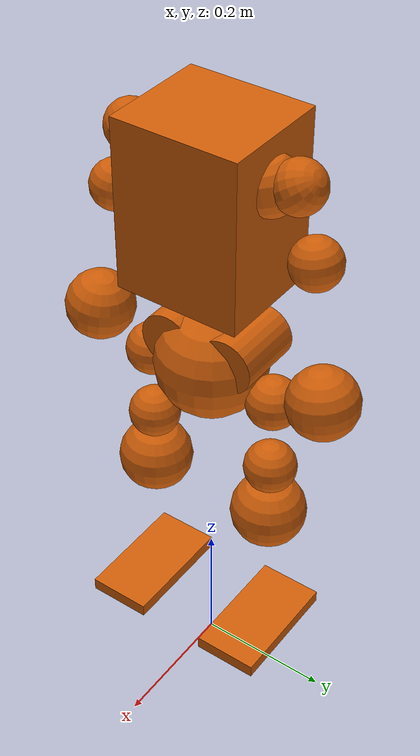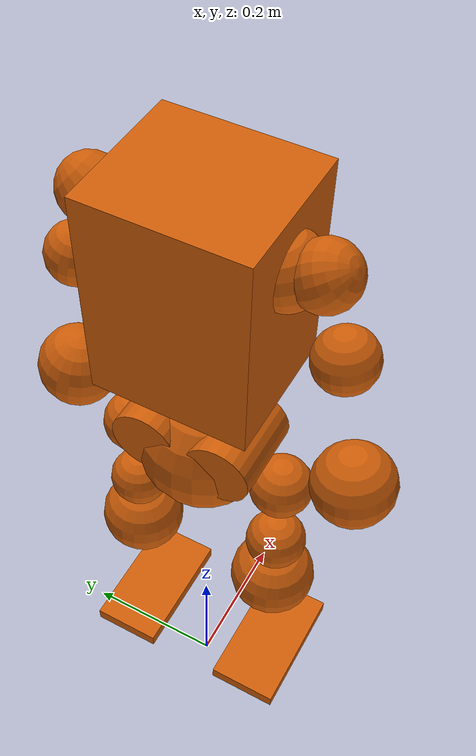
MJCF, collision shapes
<mujoco model="bumi2.0">
  <compiler angle="radian" meshdir="assets" autolimits="true"/>

    <default>
        <default class="biped">
            <default class="collision">
                <geom group="3" contype="1" conaffinity="1" friction="0.8 0.005 0.0001" rgba="0.804 0.361 0.031 0.5"/>
                <default class="collision_head">
                    <geom type="sphere" size="0.08" pos="0.0 0.0 0.08" rgba="0.804 0.361 0.031 0.5"/>
                </default>

                <default class="collision_base_upper_box">
                    <geom type="box" size="0.08 0.09 0.12" pos="0.0 0.0 0.12" rgba="0.804 0.361 0.031 0.5"/>
                </default>

                <default class="collision_base_lower_box">
                    <geom type="sphere" size="0.08" pos="0.0 0.0 0.0" rgba="0.804 0.361 0.031 0.5"/>
                </default>

                <default class="collision_left_arm_pitch">
                    <geom type="sphere" size="0.04" pos="0.0 0.0 0.0" rgba="0.804 0.361 0.031 0.5"/>
                </default>

                <default class="collision_left_arm_roll">
                    <geom type="sphere" size="0.035" pos="0.0 0.0 0.0" rgba="0.804 0.361 0.031 0.5"/>
                </default>

                <default class="collision_left_arm_yaw">
                    <geom type="sphere" size="0.035" pos="0.0 0.0 0.0" rgba="0.804 0.361 0.031 0.5"/>
                </default>

                <default class="collision_left_elbow_end">
                    <geom type="sphere" size="0.05" pos="0.0 0.0 -0.14" rgba="0.804 0.361 0.031 0.5" />
                </default>

                <default class="collision_right_arm_pitch">
                    <geom type="sphere" size="0.04" pos="0.0 0.0 0.0" rgba="0.804 0.361 0.031 0.5"/>
                </default>

                <default class="collision_right_arm_roll">
                    <geom type="sphere" size="0.035" pos="0.0 0.0 0.0" rgba="0.804 0.361 0.031 0.5"/>
                </default>

                <default class="collision_right_arm_yaw">
                    <geom type="sphere" size="0.035" pos="0.0 0.0 0.0" rgba="0.804 0.361 0.031 0.5"/>
                </default>

                <default class="collision_right_elbow_end">
                    <geom type="sphere" size="0.05" pos="0.0 0.0 -0.14" rgba="0.804 0.361 0.031 0.5"/>
                </default>

                <default class="collision_left_leg_pitch">
                    <geom type="cylinder" size="0.04 0.05" pos="0.0 0.0 0.0" quat="1 0 1 0" rgba="0.804 0.361 0.031 0.5"/>
                </default>

                <default class="collision_left_leg_roll">
                    <geom type="sphere" size="0.038" pos="0.0 0.0 0.0" rgba="0.804 0.361 0.031 0.5"/>
                </default>

                <default class="collision_left_leg_yaw">
                    <geom type="sphere" size="0.038" pos="0.0 0.0 0.0" rgba="0.804 0.361 0.031 0.5"/>
                </default>

                <default class="collision_left_knee">
                    <geom type="sphere" size="0.055" pos="0.0 0.0 0.0" rgba="0.804 0.361 0.031 0.5"/>
                </default>

                <default class="collision_left_ankle">
                    <geom type="box" size="0.09 0.048 0.01" pos="0.0153288 -2.4167e-07 -0.0252579" rgba="0.804 0.361 0.031 0.5"/>
                </default>

                <default class="collision_right_leg_pitch">
                    <geom type="cylinder" size="0.04 0.05" pos="0.0 0.0 0.0" quat="1 0 1 0" rgba="0.804 0.361 0.031 0.5"/>
                </default>

                <default class="collision_right_leg_roll">
                    <geom type="sphere" size="0.038" pos="0.0 0.0 0.0" rgba="0.804 0.361 0.031 0.5"/>
                </default>

                <default class="collision_right_leg_yaw">
                    <geom type="sphere" size="0.038" pos="0.0 0.0 0.0" rgba="0.804 0.361 0.031 0.5"/>
                </default>

                <default class="collision_right_knee">
                    <geom type="sphere" size="0.055" pos="0.0 0.0 0.0" rgba="0.804 0.361 0.031 0.5"/>
                </default>

                <default class="collision_right_ankle">
                    <geom type="box" size="0.09 0.048 0.01" pos="0.0153288 2.4303e-07 -0.0252579" rgba="0.804 0.361 0.031 0.5"/>
                </default>
            </default>

            <default class="visual">
                <geom contype="0" conaffinity="0" group="1"/>
            </default>

            <default class="joint">
                <joint damping="0.001" armature="0.03" frictionloss="0.1"/>
            </default>
        </default>
    </default>

  <asset>

    <mesh name="base_link" file="base_link.STL"/>
    <mesh name="waist_yaw_link" file="waist_yaw_link.STL"/>
    <mesh name="l_arm_pitch_link" file="l_arm_pitch_link.STL"/>
    <mesh name="l_arm_roll_link" file="l_arm_roll_link.STL"/>
    <mesh name="l_arm_yaw_link" file="l_arm_yaw_link.STL"/>
    <mesh name="l_arm_elbow_link" file="l_elbow_pitch_link.STL"/>
    <mesh name="r_arm_pitch_link" file="r_arm_pitch_link.STL"/>
    <mesh name="r_arm_roll_link" file="r_arm_roll_link.STL"/>
    <mesh name="r_arm_yaw_link" file="r_arm_yaw_link.STL"/>
    <mesh name="r_arm_elbow_link" file="r_elbow_pitch_link.STL"/>
    <mesh name="l_leg_pitch_link" file="l_leg_pitch_link.STL"/>
    <mesh name="l_leg_roll_link" file="l_leg_roll_link.STL"/>
    <mesh name="l_leg_yaw_link" file="l_leg_yaw_link.STL"/>
    <mesh name="l_knee_pitch_link" file="l_knee_pitch_link.STL"/>
    <mesh name="l_ankle_pitch_link" file="l_ankle_pitch_link.STL"/>
    <mesh name="l_ankle_roll_link" file="l_ankle_roll_link.STL"/>
    <mesh name="r_leg_pitch_link" file="r_leg_pitch_link.STL"/>
    <mesh name="r_leg_roll_link" file="r_leg_roll_link.STL"/>
    <mesh name="r_leg_yaw_link" file="r_leg_yaw_link.STL"/>
    <mesh name="r_knee_pitch_link" file="r_knee_pitch_link.STL"/>
    <mesh name="r_ankle_pitch_link" file="r_ankle_pitch_link.STL"/>
    <mesh name="r_ankle_roll_link" file="r_ankle_roll_link.STL"/>
  </asset>
  <worldbody>
    <light directional="true" diffuse=".4 .4 .4" specular="0.1 0.1 0.1" pos="0 0 5.0" dir="0 0 -1" castshadow="false"/>
    <light directional="true" diffuse=".6 .6 .6" specular="0.2 0.2 0.2" pos="0 0 4" dir="0 0 -1"/>

    <body name="base_link" pos="0.00000000 0.00000000 0.55">
      <inertial pos="0.000991382 -2.32089e-05 0.0627867" quat="0.70613 0.708074 -0.00268598 0.00216235" mass="2.20073" diaginertia="0.00745362 0.00524716 0.00394619"/>
      <geom type="mesh" contype="0" conaffinity="0" group="1" density="0" rgba="0.79216 0.81961 0.93333 1" mesh="base_link"/>
      <geom class="collision_base_lower_box"/>
      <freejoint name="root" />
      <site name='imu' size='0.01' pos='0.0 0 0.0'/>
      <body name="waist_link" pos="0 0 0.12905">
        <inertial pos="-0.00431433 0.000779481 0.142505" quat="0.999495 0.00366266 0.031287 0.00417016" mass="3.34091" diaginertia="0.0328368 0.0288524 0.0115645"/>
        <joint name="waist_yaw_joint" pos="0 0 0" axis="0 0 1" limited="true" range="-1.57 1.57"/>
        <geom type="mesh" contype="0" conaffinity="0" group="1" density="0" rgba="0.792157 0.819608 0.933333 1" mesh="waist_yaw_link"/>
        <geom class="collision_base_upper_box"/>
        <body name="l_arm_pitch_link" pos="0.0010007 0.083723 0.17204" quat="0.991445 0.130526 0 0">
          <inertial pos="0.00420418 0.0390137 -0.000166374" quat="0.0410242 0.68821 0.0984705 0.717626" mass="0.279302" diaginertia="0.000163107 0.000162095 0.000133594"/>
          <joint name="l_arm_pitch_joint" pos="0 0 0" axis="0 1 0" limited="true" range="-2.36 2.36"/>
          <geom type="mesh" contype="0" conaffinity="0" group="1" density="0" rgba="0.792157 0.819608 0.933333 1" mesh="l_arm_pitch_link"/>
          <geom class="collision_left_arm_pitch"/>
            <body name="l_arm_roll_link" pos="-0.0010007 0.0405 -6.25e-05" quat="0.835969 -0.548777 0 0">
            <inertial pos="-0.000134626 0.0558626 -0.01579" quat="0.606622 0.350291 -0.39486 0.594468" mass="0.352035" diaginertia="0.000485497 0.000433102 0.000227339"/>
            <joint name="l_arm_roll_joint" pos="0 0 0" axis="1 0 0" limited="true" range="-0.14 1.94"/>
            <geom type="mesh" contype="0" conaffinity="0" group="1" density="0" rgba="0.792157 0.819608 0.933333 1" mesh="l_arm_roll_link"/>
            <geom class="collision_left_arm_roll"/>
              <body name="l_arm_yaw_link" pos="0.0010007 0.091512 -0.035515" quat="0.866025 0.500001 0 0">
              <inertial pos="0.00743954 0.00322664 -0.0504594" quat="0.98604 0.0606162 -0.154809 0.00924042" mass="0.309233" diaginertia="0.000221623 0.000207982 0.000139547"/>
              <joint name="l_arm_yaw_joint" pos="0 0 0" axis="0 0 1" limited="true" range="-1.57 1.57"/>
              <geom type="mesh" contype="0" conaffinity="0" group="1" density="0" rgba="0.792157 0.819608 0.933333 1" mesh="l_arm_yaw_link"/>
              <geom class="collision_left_arm_yaw"/>
              <body name="l_arm_elbow_link" pos="0.010308 0 -0.058252">
                <inertial pos="-0.000328283 -0.00070263 -0.071209" quat="0.999251 0.0300514 -0.00936913 0.0224893" mass="0.232041" diaginertia="0.000765092 0.00072886 0.000118734"/>
                <joint name="l_elbow_pitch_joint" pos="0 0 0" axis="0 1 0" limited="true" range="-2.26 0"/>
                <geom type="mesh" contype="0" conaffinity="0" group="1" density="0" rgba="0.792157 0.819608 0.933333 1" mesh="l_arm_elbow_link"/>
                <geom class="collision_left_elbow_end"/>
              </body>
            </body>
          </body>
        </body>
        <body name="r_arm_pitch_link" pos="0.0010007 -0.083723 0.17204" quat="0.991445 -0.130526 0 0">
          <inertial pos="0.00420433 -0.0390135 -0.000165819" quat="-0.0419007 0.688081 -0.0992913 0.717586" mass="0.279308" diaginertia="0.000163109 0.000162099 0.000133598"/>
          <joint name="r_arm_pitch_joint" pos="0 0 0" axis="0 1 0" limited="true" range="-2.36 2.36"/>
          <geom type="mesh" contype="0" conaffinity="0" group="1" density="0" rgba="0.792157 0.819608 0.933333 1" mesh="r_arm_pitch_link"/>
          <geom class="collision_right_arm_pitch"/>
          <body name="r_arm_roll_link" pos="-0.0010007 -0.0405 -6.25e-05" quat="0.835969 0.548777 0 0">
            <inertial pos="-0.000135545 -0.0558642 -0.0157919" quat="0.350291 0.606633 -0.594436 0.39489" mass="0.35202" diaginertia="0.000485461 0.000433064 0.000227333"/>
            <joint name="r_arm_roll_joint" pos="0 0 0" axis="1 0 0" limited="true" range="-0.14 1.94"/>
            <geom type="mesh" contype="0" conaffinity="0" group="1" density="0" rgba="0.792157 0.819608 0.933333 1" mesh="r_arm_roll_link"/>
            <geom class="collision_right_arm_roll"/>
            <body name="r_arm_yaw_link" pos="0.0010007 -0.091512 -0.035515" quat="0.866025 -0.500001 0 0">
              <inertial pos="0.00743969 -0.0032267 -0.05046" quat="0.986041 -0.0606128 -0.154804 -0.0092166" mass="0.309228" diaginertia="0.000221623 0.000207981 0.000139543"/>
              <joint name="r_arm_yaw_joint" pos="0 0 0" axis="0 0 1" limited="true" range="-1.57 1.57"/>
              <geom type="mesh" contype="0" conaffinity="0" group="1" density="0" rgba="0.792157 0.819608 0.933333 1" mesh="r_arm_yaw_link"/>
              <geom class="collision_right_arm_yaw"/>
              <body name="r_arm_elbow_link" pos="0.010308 0 -0.058252">
                <inertial pos="-0.00032911 0.000702748 -0.0712054" quat="0.999253 -0.0300894 -0.00936379 -0.0223874" mass="0.232015" diaginertia="0.000764974 0.000728751 0.000118717"/>
                <joint name="r_elbow_pitch_joint" pos="0 0 0" axis="0 1 0" limited="true" range="-2.26 0"/>
                <geom type="mesh" contype="0" conaffinity="0" group="1" density="0" rgba="0.792157 0.819608 0.933333 1" mesh="r_arm_elbow_link"/>
                <geom class="collision_right_elbow_end"/>
              </body>
            </body>
          </body>
        </body>
      </body>
      <body name="l_leg_pitch_link" pos="-0.011162 0.0468 0.033398">
        <inertial pos="0.0222562 0.0472424 -0.0486573" quat="0.688527 -0.000339392 -0.258913 0.677418" mass="0.888257" diaginertia="0.0015352 0.00120756 0.000908788"/>
        <joint name="l_leg_pitch_joint" pos="0 0 0" axis="0 1 0" limited="true" range="-2.09 2.09"/>
        <geom type="mesh" contype="0" conaffinity="0" group="1" density="0" rgba="0.792157 0.819608 0.933333 1" mesh="l_leg_pitch_link"/>
        <geom class="collision_left_leg_pitch"/>
        <body name="l_leg_roll_link" pos="0.01218 0.053 -0.058648">
          <inertial pos="0.00121237 -3.45164e-05 -0.0685026" quat="0.704806 -0.00727925 -0.00814158 0.709316" mass="0.749492" diaginertia="0.00162101 0.0013376 0.000892224"/>
          <joint name="l_leg_roll_joint" pos="0 0 0" axis="1 0 0" limited="true" range="-0.66 1.57"/>
          <geom type="mesh" contype="0" conaffinity="0" group="1" density="0" rgba="0.792157 0.819608 0.933333 1" mesh="l_leg_roll_link"/>
          <geom class="collision_left_leg_roll"/>
          <body name="l_leg_yaw_link" pos="0 0 -0.1155">
            <inertial pos="0.00265259 0.00636494 -0.0724071" quat="0.983843 0.150006 0.0971645 -0.0104715" mass="0.936643" diaginertia="0.0012577 0.00106213 0.000830318"/>
            <joint name="l_leg_yaw_joint" pos="0 0 0" axis="0 0 1" limited="true" range="-2.53 2.53"/>
            <geom type="mesh" contype="0" conaffinity="0" group="1" density="0" rgba="0.792157 0.819608 0.933333 1" mesh="l_leg_yaw_link"/>
            <geom class="collision_left_leg_yaw"/>
            <body name="l_knee_pitch_link" pos="0 0 -0.0835">
              <inertial pos="0.00690952 -0.00116128 -0.0934036" quat="0.99519 0.0368406 -0.0224839 -0.0879473" mass="1.16909" diaginertia="0.00376841 0.00369425 0.00104565"/>
              <joint name="l_knee_pitch_joint" pos="0 0 0" axis="0 1 0" limited="true" range="0 2.24"/>
              <geom type="mesh" contype="0" conaffinity="0" group="1" density="0" rgba="0.792157 0.819608 0.933333 1" mesh="l_knee_pitch_link"/>
              <geom class="collision_left_knee"/>
              <body name="l_ankle_pitch_link" pos="1.437e-05 0 -0.20237">
                <inertial pos="-0.000133048 0.000877143 0.00133703" quat="0.484301 0.513305 0.480281 0.520866" mass="0.166072" diaginertia="2.96663e-05 2.67576e-05 2.42236e-05"/>
                <joint name="l_ankle_pitch_joint" pos="0 0 0" axis="0 1 0" limited="true" range="-0.96 0.44"/>
                <geom type="mesh" contype="0" conaffinity="0" group="1" density="0" rgba="0.792157 0.819608 0.933333 1" mesh="l_ankle_pitch_link"/>
                <body name="l_ankle_roll_link">
                  <inertial pos="0.0153288 -2.4167e-07 -0.0252579" quat="3.94096e-05 0.727504 -1.18917e-05 0.686103" mass="0.267729" diaginertia="0.000537144 0.000501951 9.62786e-05"/>
                  <joint name="l_ankle_roll_joint" pos="0 0 0" axis="1 0 0" limited="true" range="-0.17 0.17"/>
                  <geom type="mesh" contype="0" conaffinity="0" group="1" density="0" rgba="1 0 0 1" mesh="l_ankle_roll_link"/>
                  <geom class="collision_left_ankle"/>
                </body>
              </body>
            </body>
          </body>
        </body>
      </body>
      <body name="r_leg_pitch_link" pos="-0.011162 -0.0468 0.033398">
        <inertial pos="0.0222551 -0.0472117 -0.0486872" quat="0.678402 -0.25936 -0.000103884 0.687389" mass="0.888269" diaginertia="0.00153471 0.00120749 0.000909896"/>
        <joint name="r_leg_pitch_joint" pos="0 0 0" axis="0 1 0" limited="true" range="-2.09 2.09"/>
        <geom type="mesh" contype="0" conaffinity="0" group="1" density="0" rgba="0.792157 0.819608 0.933333 1" mesh="r_leg_pitch_link"/>
        <geom class="collision_right_leg_pitch"/>
        <body name="r_leg_roll_link" pos="0.01218 -0.053 -0.058648">
          <inertial pos="0.00121108 3.43366e-05 -0.0685066" quat="0.709301 -0.00825784 -0.00733406 0.704819" mass="0.749453" diaginertia="0.00162067 0.0013373 0.000892172"/>
          <joint name="r_leg_roll_joint" pos="0 0 0" axis="1 0 0" limited="true" range="-1.57 0.66"/>
          <geom type="mesh" contype="0" conaffinity="0" group="1" density="0" rgba="0.792157 0.819608 0.933333 1" mesh="r_leg_roll_link"/>
          <geom class="collision_right_leg_roll"/>
          <body name="r_leg_yaw_link" pos="0 0 -0.1155">
            <inertial pos="0.00265208 -0.00636498 -0.0724078" quat="0.983841 -0.150031 0.0971478 0.0104631" mass="0.936613" diaginertia="0.00125765 0.00106208 0.000830292"/>
            <joint name="r_leg_yaw_joint" pos="0 0 0" axis="0 0 1" limited="true" range="-2.53 2.53"/>
            <geom type="mesh" contype="0" conaffinity="0" group="1" density="0" rgba="0.792157 0.819608 0.933333 1" mesh="r_leg_yaw_link"/>
            <geom class="collision_right_leg_yaw"/>
            <body name="r_knee_pitch_link" pos="0 0 -0.0835">
              <inertial pos="0.0069094 0.00116159 -0.093404" quat="0.995194 -0.0368396 -0.0224844 0.0878977" mass="1.16908" diaginertia="0.00376837 0.00369424 0.00104559"/>
              <joint name="r_knee_pitch_joint" pos="0 0 0" axis="0 1 0" limited="true" range="0 2.24"/>
              <geom type="mesh" contype="0" conaffinity="0" group="1" density="0" rgba="0.792157 0.819608 0.933333 1" mesh="r_knee_pitch_link"/>
              <geom class="collision_right_knee"/>
              <body name="r_ankle_pitch_link" pos="1.437e-05 0 -0.20238">
                <inertial pos="-0.000133055 -0.000877143 0.00133704" quat="0.520866 0.480281 0.513305 0.484301" mass="0.166072" diaginertia="2.96663e-05 2.67576e-05 2.42236e-05"/>
                <joint name="r_ankle_pitch_joint" pos="0 0 0" axis="0 1 0" limited="true" range="-0.96 0.44"/>
                <geom type="mesh" contype="0" conaffinity="0" group="1" density="0" rgba="0.792157 0.819608 0.933333 1" mesh="r_ankle_pitch_link"/>
                <body name="r_ankle_roll_link">
                  <inertial pos="0.0153288 2.4303e-07 -0.0252579" quat="-3.94465e-05 0.727504 1.18394e-05 0.686103" mass="0.267729" diaginertia="0.000537144 0.000501951 9.62786e-05"/>
                  <joint name="r_ankle_roll_joint" pos="0 0 0" axis="1 0 0" limited="true" range="-0.17 0.17"/>
                  <geom type="mesh" contype="0" conaffinity="0" group="1" density="0" rgba="1 0 0 1" mesh="r_ankle_roll_link"/>
                  <geom class="collision_right_ankle"/>
                </body>
              </body>
            </body>
          </body>
        </body>
      </body>
    </body>
  </worldbody>

  <sensor>
      <framequat     name='orientation' objtype='site' noise='0.001' objname='imu'/>
      <framepos      name='position' objtype='site' noise='0.001' objname='imu'/>
      <gyro          name='imu_ang_vel'    site='imu' noise='0.005' cutoff='34.9'/>
      <velocimeter   name='imu_lin_vel'     site='imu' noise='0.001' cutoff='30'/>
      <accelerometer name='linear-acceleration' site='imu' noise='0.005' cutoff='157'/>
      <magnetometer  name='magnetometer'        site='imu'/>
  </sensor>
</mujoco>
